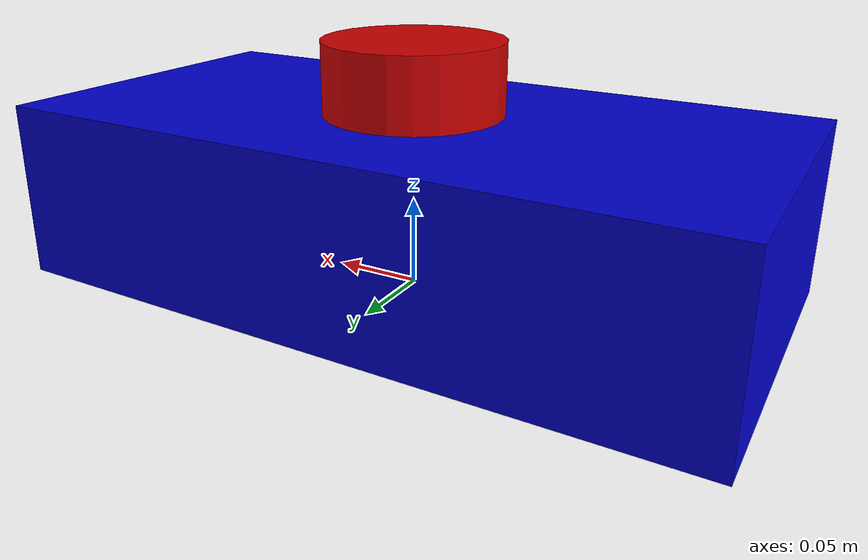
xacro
<?xml version="1.0"?>
<robot name="single_motor" xmlns:xacro="http://www.ros.org/wiki/xacro">

    <material name="blue">
        <color rgba="0 0 0.8 1" />
    </material>

    <material name="red">
        <color rgba="0.8 0 0 1" />
    </material>

    <link name="base_footprint" />

    <link name="base_link" >
        <visual>
            <geometry>
                <box size="0.4 0.2 0.1" />
            </geometry>
            <origin xyz="0 0 0.05" rpy="0 0 0" />
            <material name="blue" />
        </visual>
    </link>

    <link name="motor_link">
        <visual>
            <geometry>
                <cylinder radius="0.05" length="0.04" />
            </geometry>
            <origin xyz="0 0 0.02" rpy="0 0 0" />
            <material name="red" />
        </visual>
    </link>

    <joint name="footprint_base_joint" type="fixed">
        <parent link="base_footprint" />
        <child link="base_link" />
        <origin xyz="0 0 0" rpy="0 0 0" />
    </joint>

    <joint name="base_motor_joint" type="continuous">
        <parent link="base_link" />
        <child link="motor_link" />
        <origin xyz="0 0 0.1" rpy="0 0 0" />
        <axis xyz="0 0 1" />
    </joint>

    <ros2_control name="motor_hardware" type="actuator">
        <hardware>
            <plugin>motor_control/MotorHardwareInterface</plugin>  <!-- name of th class in .hpp file-->
        </hardware>

        <joint name="base_motor_joint">
            <command_interface name="velocity" />
            <state_interface name="position" />
            <state_interface name="velocity" />
        </joint>
    </ros2_control>

</robot>
